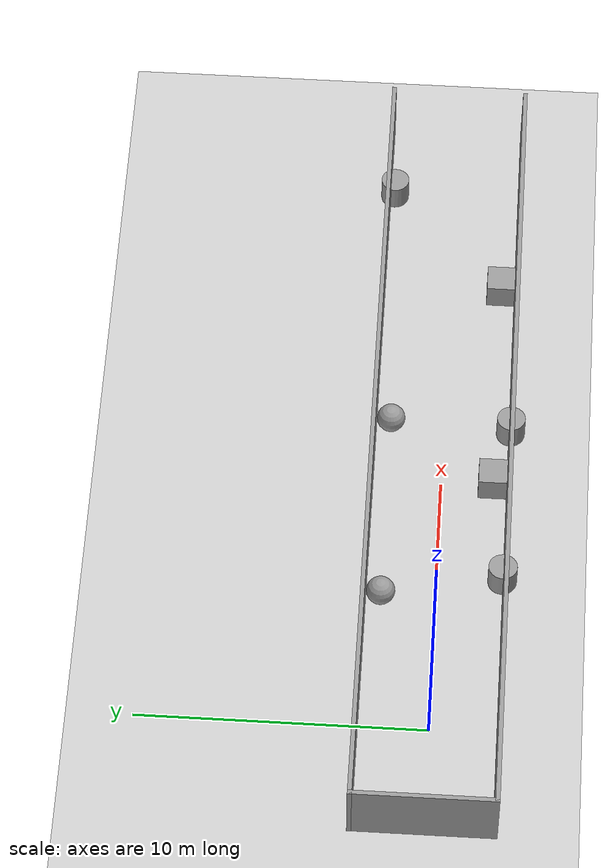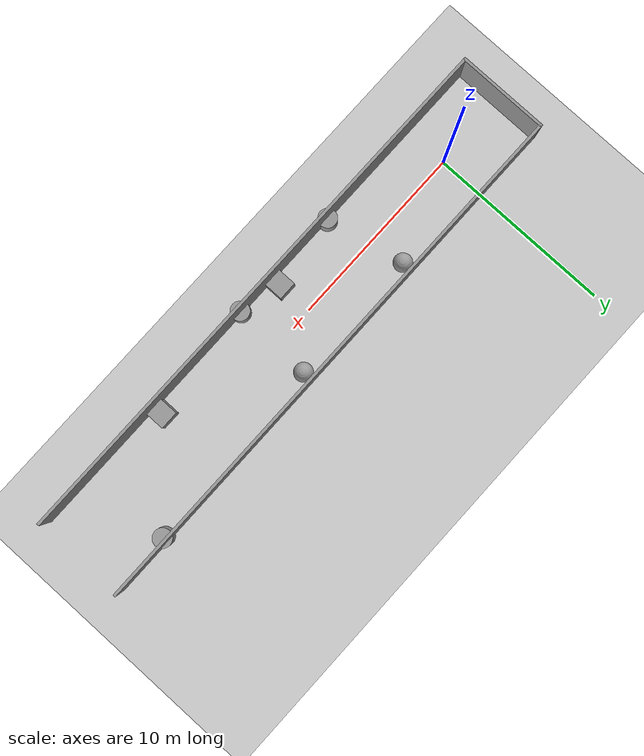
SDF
<sdf version="1.7">
 <world name="default">
  <light name="sun" type="directional">
   <pose>0 0 10 0 -0 0</pose>
   <diffuse>0.8 0.8 0.8 1</diffuse>
   <specular>0.2 0.2 0.2 1</specular>
   <attenuation>
    <range>1000</range>
    <constant>0.9</constant>
    <linear>0.01</linear>
    <quadratic>0.001</quadratic>
   </attenuation>
   <direction>-0.5 0.1 -0.9</direction>
   <spot><inner_angle>0</inner_angle><outer_angle>0</outer_angle><falloff>0</falloff></spot>
  </light>
  <model name="ground_plane">
   <static>1</static>
   <link name="link">
    <collision name="collision">
     <geometry><plane><normal>0 0 1</normal><size>100 100</size></plane></geometry>
     <surface>
      <contact><collide_bitmask>65535</collide_bitmask></contact>
      <friction><ode><mu>100</mu><mu2>50</mu2></ode></friction>
     </surface>
    </collision>
    <visual name="visual">
     <cast_shadows>0</cast_shadows>
     <geometry><plane><normal>0 0 1</normal><size>100 100</size></plane></geometry>
     <material>
      <script><uri>file://media/materials/scripts/gazebo.material</uri><name>Gazebo/Grey</name></script>
     </material>
    </visual>
   </link>
  </model>
  <gravity>0 0 -9.8</gravity>
  <magnetic_field>6e-06 2.3e-05 -4.2e-05</magnetic_field>
  <atmosphere type="adiabatic"/>
  <physics type="ode">
   <max_step_size>0.001</max_step_size>
   <real_time_factor>1</real_time_factor>
   <real_time_update_rate>1000</real_time_update_rate>
  </physics>
  <scene><ambient>0.4 0.4 0.4 1</ambient><background>0.7 0.7 0.7 1</background><shadows>1</shadows></scene>
  <spherical_coordinates>
   <surface_model>EARTH_WGS84</surface_model>
   <latitude_deg>0</latitude_deg>
   <longitude_deg>0</longitude_deg>
   <elevation>0</elevation>
   <heading_deg>0</heading_deg>
  </spherical_coordinates>
  <model name="Untitled">
   <static>true</static>
   <pose>11 1 0 0 -0 0</pose>
   <link name="Wall_2">
    <collision name="Wall_2_Collision">
     <geometry><box><size>30 0.15 2.5</size></box></geometry>
     <pose>0 0 1.25 0 -0 0</pose>
    </collision>
    <visual name="Wall_2_Visual">
     <pose>0 0 1.25 0 -0 0</pose>
     <geometry><box><size>30 0.15 2.5</size></box></geometry>
     <material>
      <script><uri>file://media/materials/scripts/gazebo.material</uri><name>Gazebo/Grey</name></script>
      <ambient>1 1 1 1</ambient>
     </material>
     <meta><layer>0</layer></meta>
    </visual>
    <pose>0 1.47444 0 0 -0 0</pose>
   </link>
   <link name="Wall_4">
    <collision name="Wall_4_Collision">
     <geometry><box><size>5 0.15 2.5</size></box></geometry>
     <pose>0 0 1.25 0 -0 0</pose>
    </collision>
    <visual name="Wall_4_Visual">
     <pose>0 0 1.25 0 -0 0</pose>
     <geometry><box><size>5 0.15 2.5</size></box></geometry>
     <material>
      <script><uri>file://media/materials/scripts/gazebo.material</uri><name>Gazebo/Grey</name></script>
      <ambient>1 1 1 1</ambient>
     </material>
     <meta><layer>0</layer></meta>
    </visual>
    <pose>-14.925 -0.950557 0 0 -0 -1.5708</pose>
   </link>
   <link name="Wall_6">
    <collision name="Wall_6_Collision">
     <geometry><box><size>30 0.15 2.5</size></box></geometry>
     <pose>0 0 1.25 0 -0 0</pose>
    </collision>
    <visual name="Wall_6_Visual">
     <pose>0 0 1.25 0 -0 0</pose>
     <geometry><box><size>30 0.15 2.5</size></box></geometry>
     <material>
      <script><uri>file://media/materials/scripts/gazebo.material</uri><name>Gazebo/Grey</name></script>
      <ambient>1 1 1 1</ambient>
     </material>
     <meta><layer>0</layer></meta>
    </visual>
    <pose>0 -3.37556 0 0 -0 0</pose>
   </link>
   <static>1</static>
  </model>
  <model name="unit_box">
   <static>true</static>
   <pose>10.0464 -1.80056 0.499999 2e-06 -0 0</pose>
   <link name="link">
    <inertial>
     <mass>1</mass>
     <inertia>
      <ixx>0.166667</ixx>
      <ixy>0</ixy>
      <ixz>0</ixz>
      <iyy>0.166667</iyy>
      <iyz>0</iyz>
      <izz>0.166667</izz>
     </inertia>
    </inertial>
    <collision name="collision"><geometry><box><size>1 1 1</size></box></geometry></collision>
    <visual name="visual">
     <geometry><box><size>1 1 1</size></box></geometry>
     <material>
      <script><name>Gazebo/Grey</name><uri>file://media/materials/scripts/gazebo.material</uri></script>
     </material>
    </visual>
   </link>
  </model>
  <model name="unit_sphere">
   <static>true</static>
   <pose>5.17717 1.89172 0.5 0.017097 -0 0</pose>
   <link name="link">
    <inertial>
     <mass>1</mass>
     <inertia><ixx>0.1</ixx><ixy>0</ixy><ixz>0</ixz><iyy>0.1</iyy><iyz>0</iyz><izz>0.1</izz></inertia>
    </inertial>
    <collision name="collision"><geometry><sphere><radius>0.5</radius></sphere></geometry></collision>
    <visual name="visual">
     <geometry><sphere><radius>0.5</radius></sphere></geometry>
     <material>
      <script><name>Gazebo/Grey</name><uri>file://media/materials/scripts/gazebo.material</uri></script>
     </material>
    </visual>
   </link>
  </model>
  <model name="unit_cylinder">
   <static>true</static>
   <pose>6.07937 -2.27557 0.499998 3e-06 -4e-06 0</pose>
   <link name="link">
    <inertial>
     <mass>1</mass>
     <inertia><ixx>0.145833</ixx><ixy>0</ixy><ixz>0</ixz><iyy>0.145833</iyy><iyz>0</iyz><izz>0.125</izz></inertia>
    </inertial>
    <collision name="collision">
     <geometry><cylinder><radius>0.5</radius><length>1</length></cylinder></geometry>
    </collision>
    <visual name="visual">
     <geometry><cylinder><radius>0.5</radius><length>1</length></cylinder></geometry>
     <material>
      <script><name>Gazebo/Grey</name><uri>file://media/materials/scripts/gazebo.material</uri></script>
     </material>
    </visual>
   </link>
  </model>
  <model name="unit_sphere_0">
   <static>true</static>
   <pose>12.4384 1.89054 0.5 0.022035 -0 0</pose>
   <link name="link">
    <inertial>
     <mass>1</mass>
     <inertia><ixx>0.1</ixx><ixy>0</ixy><ixz>0</ixz><iyy>0.1</iyy><iyz>0</iyz><izz>0.1</izz></inertia>
    </inertial>
    <collision name="collision"><geometry><sphere><radius>0.5</radius></sphere></geometry></collision>
    <visual name="visual">
     <geometry><sphere><radius>0.5</radius></sphere></geometry>
     <material>
      <script><name>Gazebo/Grey</name><uri>file://media/materials/scripts/gazebo.material</uri></script>
     </material>
    </visual>
   </link>
  </model>
  <model name="unit_box_0">
   <static>true</static>
   <pose>18.5083 -1.80056 0.499995 1e-05 -0 0</pose>
   <link name="link">
    <inertial>
     <mass>1</mass>
     <inertia>
      <ixx>0.166667</ixx>
      <ixy>0</ixy>
      <ixz>0</ixz>
      <iyy>0.166667</iyy>
      <iyz>0</iyz>
      <izz>0.166667</izz>
     </inertia>
    </inertial>
    <collision name="collision"><geometry><box><size>1 1 1</size></box></geometry></collision>
    <visual name="visual">
     <geometry><box><size>1 1 1</size></box></geometry>
     <material>
      <script><name>Gazebo/Grey</name><uri>file://media/materials/scripts/gazebo.material</uri></script>
     </material>
    </visual>
   </link>
  </model>
  <model name="unit_cylinder_0">
   <static>true</static>
   <pose>12.3166 -2.36023 0.499993 -3e-06 -4e-06 -0</pose>
   <link name="link">
    <inertial>
     <mass>1</mass>
     <inertia><ixx>0.145833</ixx><ixy>0</ixy><ixz>0</ixz><iyy>0.145833</iyy><iyz>0</iyz><izz>0.125</izz></inertia>
    </inertial>
    <collision name="collision">
     <geometry><cylinder><radius>0.5</radius><length>1</length></cylinder></geometry>
    </collision>
    <visual name="visual">
     <geometry><cylinder><radius>0.5</radius><length>1</length></cylinder></geometry>
     <material>
      <script><name>Gazebo/Grey</name><uri>file://media/materials/scripts/gazebo.material</uri></script>
     </material>
    </visual>
   </link>
  </model>
  <model name="unit_cylinder_1">
   <static>true</static>
   <pose>22.8151 2.25832 0.499997 3e-06 4e-06 -0</pose>
   <link name="link">
    <inertial>
     <mass>1</mass>
     <inertia><ixx>0.145833</ixx><ixy>0</ixy><ixz>0</ixz><iyy>0.145833</iyy><iyz>0</iyz><izz>0.125</izz></inertia>
    </inertial>
    <collision name="collision">
     <geometry><cylinder><radius>0.5</radius><length>1</length></cylinder></geometry>
    </collision>
    <visual name="visual">
     <geometry><cylinder><radius>0.5</radius><length>1</length></cylinder></geometry>
     <material>
      <script><name>Gazebo/Grey</name><uri>file://media/materials/scripts/gazebo.material</uri></script>
     </material>
    </visual>
   </link>
  </model>
  <plugin name="teste" filename="libteste.so"/>
 </world>
</sdf>
